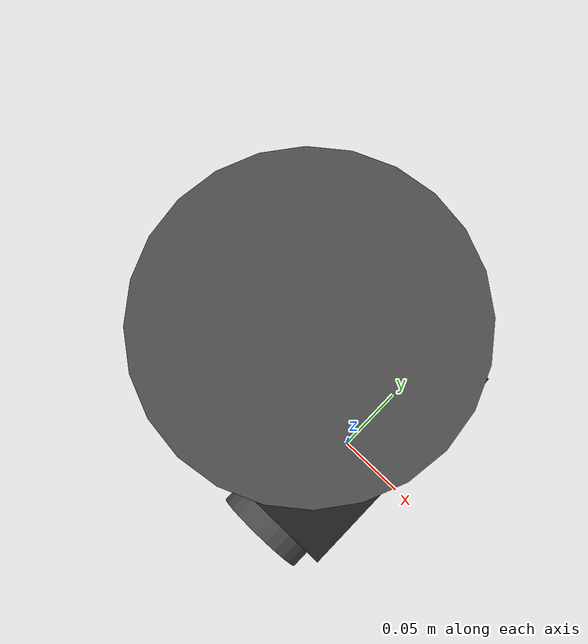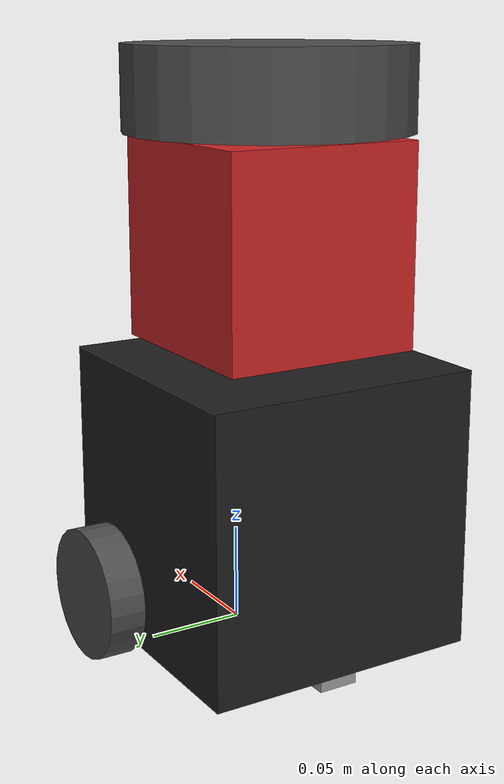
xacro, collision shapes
<?xml version="1.0" ?>
<robot name="turtlebot3_burger" xmlns:xacro="http://ros.org/wiki/xacro">
  <xacro:include filename="$(find turtlebot3_description)/urdf/common_properties.xacro"/>
  <xacro:include filename="$(find me_turtlebot)/urdf/turtlebot3_burger.gazebo.xacro"/>

  <link name="base_footprint"/>

  <joint name="base_joint" type="fixed">
    <parent link="base_footprint"/>
    <child link="base_link"/>
    <origin xyz="0.0 0.0 0.010" rpy="0 0 0"/>
  </joint>

  <link name="base_link">
    <visual>
      <origin xyz="-0.032 0 0.0" rpy="0 0 0"/>
      <geometry>
        <mesh filename="package://turtlebot3_description/meshes/bases/burger_base.stl" scale="0.001 0.001 0.001"/>
      </geometry>
      <material name="light_black"/>
    </visual>

    <collision>
      <origin xyz="-0.032 0 0.070" rpy="0 0 0"/>
      <geometry>
        <box size="0.140 0.140 0.140"/>
      </geometry>
    </collision>

    <inertial>
      <origin xyz="-0.032 0 0" rpy="0 0 0"/>
      <mass value="1"/>
      <inertia ixx="0.01" ixy="0.0" ixz="0.0"
               iyy="0.01" iyz="0.0"
               izz="0.01" />
    </inertial>
  </link>

  <joint name="wheel_left_joint" type="continuous">
    <parent link="base_link"/>
    <child link="wheel_left_link"/>
    <origin xyz="0.0 0.08 0.023" rpy="${-M_PI*0.5} 0 0"/>
    <axis xyz="0 0 1"/>
  </joint>

  <link name="wheel_left_link">
    <visual>
      <origin xyz="0 0 0" rpy="${M_PI*0.5} 0 0"/>
      <geometry>
        <mesh filename="package://turtlebot3_description/meshes/wheels/left_tire.stl" scale="0.001 0.001 0.001"/>
      </geometry>
      <material name="dark"/>
    </visual>

    <collision>
      <origin xyz="0 0 0" rpy="0 0 0"/>
      <geometry>
        <cylinder length="0.018" radius="0.033"/>
      </geometry>
    </collision>

    <inertial>
      <origin xyz="0 0 0" />
      <mass value="0.01" />
      <inertia ixx="0.001" ixy="0.0" ixz="0.0"
               iyy="0.001" iyz="0.0"
               izz="0.001" />
    </inertial>
  </link>

  <joint name="wheel_right_joint" type="continuous">
    <parent link="base_link"/>
    <child link="wheel_right_link"/>
    <origin xyz="0.0 -0.08 0.023" rpy="${-M_PI*0.5} 0 0"/>
    <axis xyz="0 0 1"/>
  </joint>

  <link name="wheel_right_link">
    <visual>
      <origin xyz="0 0 0" rpy="${M_PI*0.5} 0 0"/>
      <geometry>
        <mesh filename="package://turtlebot3_description/meshes/wheels/right_tire.stl" scale="0.001 0.001 0.001"/>
      </geometry>
      <material name="dark"/>
    </visual>

    <collision>
      <origin xyz="0 0 0" rpy="0 0 0"/>
      <geometry>
        <cylinder length="0.018" radius="0.033"/>
      </geometry>
    </collision>

    <inertial>
      <origin xyz="0 0 0" />
      <mass value="0.01" />
      <inertia ixx="0.001" ixy="0.0" ixz="0.0"
               iyy="0.001" iyz="0.0"
               izz="0.001" />
    </inertial>
  </link>

  <joint name="caster_back_joint" type="fixed">
    <parent link="base_link"/>
    <child link="caster_back_link"/>
    <origin xyz="-0.081 0 -0.004" rpy="${-M_PI*0.5} 0 0"/>
  </joint>

  <link name="caster_back_link">
    <collision>
      <origin xyz="0 0 0" rpy="0 0 0"/>
      <geometry>
        <box size="0.030 0.010 0.020"/>
      </geometry>
    </collision>

    <inertial>
      <origin xyz="0 0 0" />
      <mass value="0.01" />
      <inertia ixx="0.001" ixy="0.0" ixz="0.0"
               iyy="0.001" iyz="0.0"
               izz="0.001" />
    </inertial>
  </link>

  <joint name="imu_joint" type="fixed">
    <parent link="base_link"/>
    <child link="imu_link"/>
    <origin xyz="-0.032 0 0.068" rpy="0 0 0"/>
  </joint>

  <link name="imu_link"/>

  <joint name="scan_joint" type="fixed">
    <parent link="base_link"/>
    <child link="base_scan"/>
    <origin xyz="-0.032 0 0.271" rpy="0 0 0"/>
  </joint>

  <link name="base_scan">
    <visual>
      <origin xyz="0 0 0.0" rpy="0 0 0"/>
      <geometry>
        <mesh filename="package://turtlebot3_description/meshes/sensors/lds.stl" scale="0.001 0.001 0.001"/>
      </geometry>
      <material name="dark"/>
    </visual>

    <collision>
      <origin xyz="0 0 0" rpy="0 0 0"/>
      <geometry>
        <cylinder length="0.0408" radius="0.070"/>
      </geometry>
    </collision>

    <inertial>
      <mass value="0.01" />
      <origin xyz="0 0 0" />
      <inertia ixx="0.001" ixy="0.0" ixz="0.0"
               iyy="0.001" iyz="0.0"
               izz="0.001" />
    </inertial>
  </link>

  <link name="base_camera">
    <visual>
      <origin xyz="0 0 0" rpy="0 0 0"/>
      <geometry>
        <box size=".1 .1 .1"/>
      </geometry>
      <material name="red"/>
    </visual>
    <collision>
      <origin xyz="0 0 0" rpy="0 0 0"/>
      <geometry>
        <box size=".1 .1 .1"/>
      </geometry>
    </collision>
    <inertial>
      <mass value="1e-5" />
      <origin xyz="0 0 0" rpy="0 0 0"/>
      <inertia ixx="1e-6" ixy="0" ixz="0" iyy="1e-6" iyz="0" izz="1e-6" />
    </inertial>
  </link>

  <joint name="camera_joint" type="fixed">
    <parent link="base_link"/>
    <child link="base_camera"/>
    <origin xyz="-0.032 0 0.198" rpy="0 0 0"/>
  </joint>

</robot>

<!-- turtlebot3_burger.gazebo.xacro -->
<robot name="turtlebot3_burger_sim" xmlns:xacro="http://ros.org/wiki/xacro">
  <xacro:property name="M_PI" value="3.141592653" />
  <xacro:arg name="laser_visual" default="false"/>
  <xacro:arg name="imu_visual"   default="false"/>

  <gazebo>
    <plugin name="turtlebot3_burger_controller" filename="libgazebo_ros_diff_drive.so">
      <commandTopic>cmd_vel</commandTopic>
      <odometryTopic>odom</odometryTopic>
      <odometryFrame>odom</odometryFrame>
      <robotBaseFrame>base_footprint</robotBaseFrame>
      <publishWheelTF>false</publishWheelTF>
      <publishWheelJointState>true</publishWheelJointState>
      <legacyMode>false</legacyMode>
      <updateRate>100</updateRate>
      <leftJoint>wheel_left_joint</leftJoint>
      <rightJoint>wheel_right_joint</rightJoint>
      <wheelSeparation>0.160</wheelSeparation>
      <wheelDiameter>0.066</wheelDiameter>
      <wheelAcceleration>1</wheelAcceleration>
      <wheelTorque>10</wheelTorque>
    </plugin>
  </gazebo>

  <gazebo reference="base_link">
    <material>Gazebo/Grey</material>
  </gazebo>

  <gazebo reference="wheel_left_link">
    <mu1>10</mu1>
    <mu2>10</mu2>
    <kp>500000.0</kp>
    <kd>10.0</kd>
    <minDepth>0.001</minDepth>
    <maxVel>0.1</maxVel>
    <fdir1>1 0 0</fdir1>
    <material>Gazebo/DarkGrey</material>
  </gazebo>

  <gazebo reference="wheel_right_link">
    <mu1>10</mu1>
    <mu2>10</mu2>
    <kp>500000.0</kp>
    <kd>10.0</kd>
    <minDepth>0.001</minDepth>
    <maxVel>0.1</maxVel>
    <fdir1>1 0 0</fdir1>
    <material>Gazebo/DarkGrey</material>
  </gazebo>

  <gazebo reference="caster_back_link">
    <mu1>0.0</mu1>
    <mu2>0.0</mu2>
    <kp>1000000.0</kp>
    <kd>100.0</kd>
    <minDepth>0.001</minDepth>
    <maxVel>1.0</maxVel>
    <material>Gazebo/Grey</material>
  </gazebo>

  <gazebo>
    <plugin name="imu_plugin" filename="libgazebo_ros_imu.so">
      <alwaysOn>true</alwaysOn>
      <bodyName>imu_link</bodyName>
      <topicName>/imu</topicName>
      <serviceName>/imu_service</serviceName>
      <gaussianNoise>0.0</gaussianNoise>
      <updateRate>100.0</updateRate>
      <imu>
        <noise>
          <type>gaussian</type>
          <rate>
            <mean>0.0</mean>
            <stddev>2e-4</stddev>
            <bias_mean>0.0000075</bias_mean>
            <bias_stddev>0.0000008</bias_stddev>
          </rate>
          <accel>
            <mean>0.0</mean>
            <stddev>1.7e-2</stddev>
            <bias_mean>0.1</bias_mean>
            <bias_stddev>0.001</bias_stddev>
          </accel>
        </noise>
      </imu>
    </plugin>
  </gazebo>

  <gazebo reference="imu_link">
    <sensor type="imu" name="imu">
      <always_on>true</always_on>
      <update_rate>50</update_rate>
      <visualize>$(arg imu_visual)</visualize>
    </sensor>
    <material>Gazebo/Grey</material>
  </gazebo>

  <gazebo reference="base_scan">
    <material>Gazebo/DarkGrey</material>
    <sensor type="ray" name="lds_lfcd_sensor">
      <pose>0 0 0 0 0 0</pose>
      <visualize>$(arg laser_visual)</visualize>
      <update_rate>100</update_rate>
      <ray>
        <scan>
          <horizontal>
            <samples>360</samples>
            <resolution>1</resolution>
            <min_angle>0.0</min_angle>
            <max_angle>6.28</max_angle>
          </horizontal>
        </scan>
        <range>
          <min>0.1</min>
          <max>10.0</max>
          <resolution>0.001</resolution>
        </range>
        <noise>
          <type>gaussian</type>
          <mean>0.0</mean>
          <stddev>0.001</stddev>
        </noise>
      </ray>
      <plugin name="gazebo_ros_lds_lfcd_controller" filename="libgazebo_ros_laser.so">
        <topicName>/scan</topicName>
        <frameName>base_scan</frameName>
      </plugin>
    </sensor>
  </gazebo>

  <!-- camera -->
  <gazebo reference="base_camera">
    <sensor type="camera" name="camera1">
      <update_rate>30.0</update_rate>
      <camera name="head">
        <horizontal_fov>1.3962634</horizontal_fov>
        <image>
          <width>300</width>
          <height>300</height>
          <format>R8G8B8</format>
        </image>
        <clip>
          <near>0.02</near>
          <far>300</far>
        </clip>
        <noise>
          <type>gaussian</type>
          <!-- Noise is sampled independently per pixel on each frame.
               That pixel's noise value is added to each of its color
               channels, which at that point lie in the range [0,1]. -->
          <mean>0.0</mean>
          <stddev>0.007</stddev>
        </noise>
      </camera>
      <plugin name="camera_controller" filename="libgazebo_ros_camera.so">
        <alwaysOn>true</alwaysOn>
        <updateRate>30.0</updateRate>
        <cameraName>/camera</cameraName>
        <imageTopicName>image_raw</imageTopicName>
        <cameraInfoTopicName>camera_info</cameraInfoTopicName>
        <frameName>base_camera</frameName>
        <hackBaseline>0.07</hackBaseline>
        <distortionK1>0.0</distortionK1>
        <distortionK2>0.0</distortionK2>
        <distortionK3>0.0</distortionK3>
        <distortionT1>0.0</distortionT1>
        <distortionT2>0.0</distortionT2>
      </plugin>
    </sensor>
  </gazebo>

</robot>
